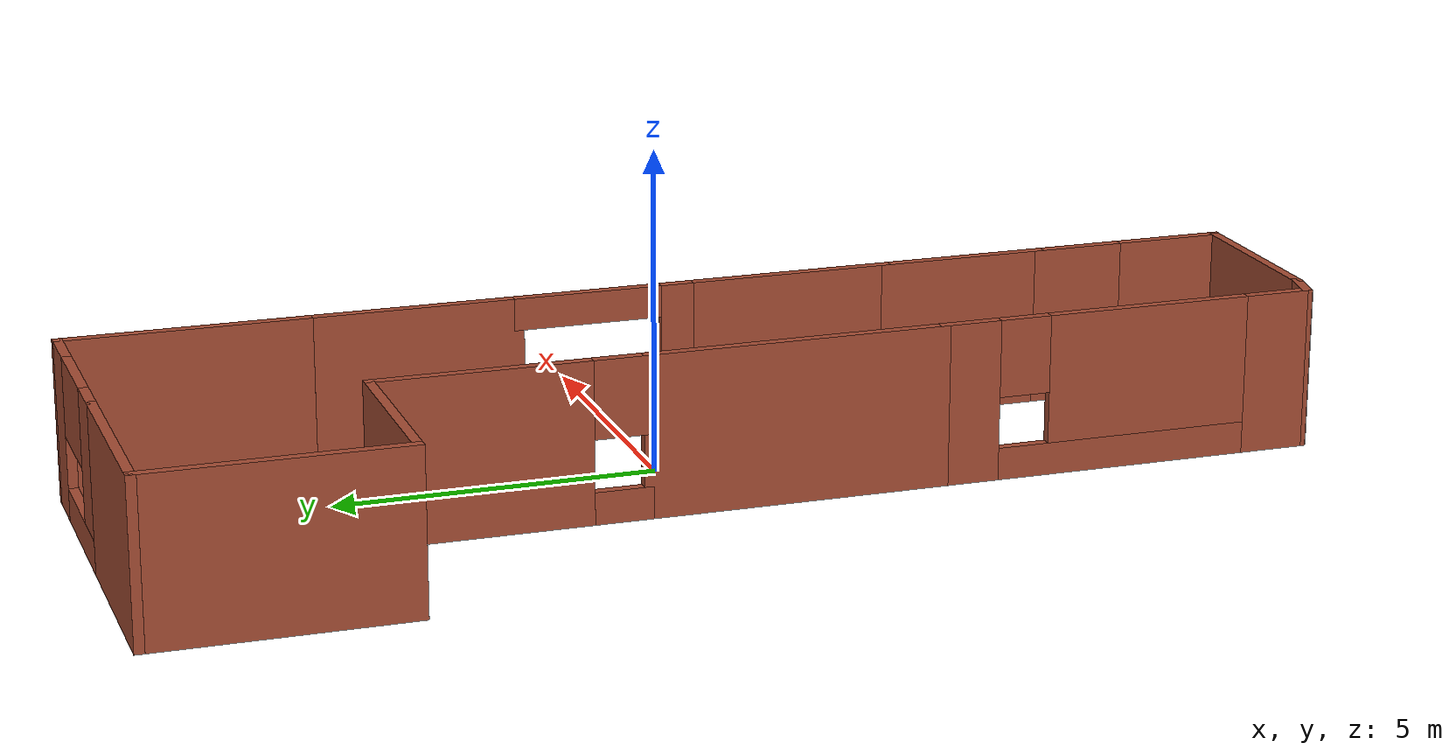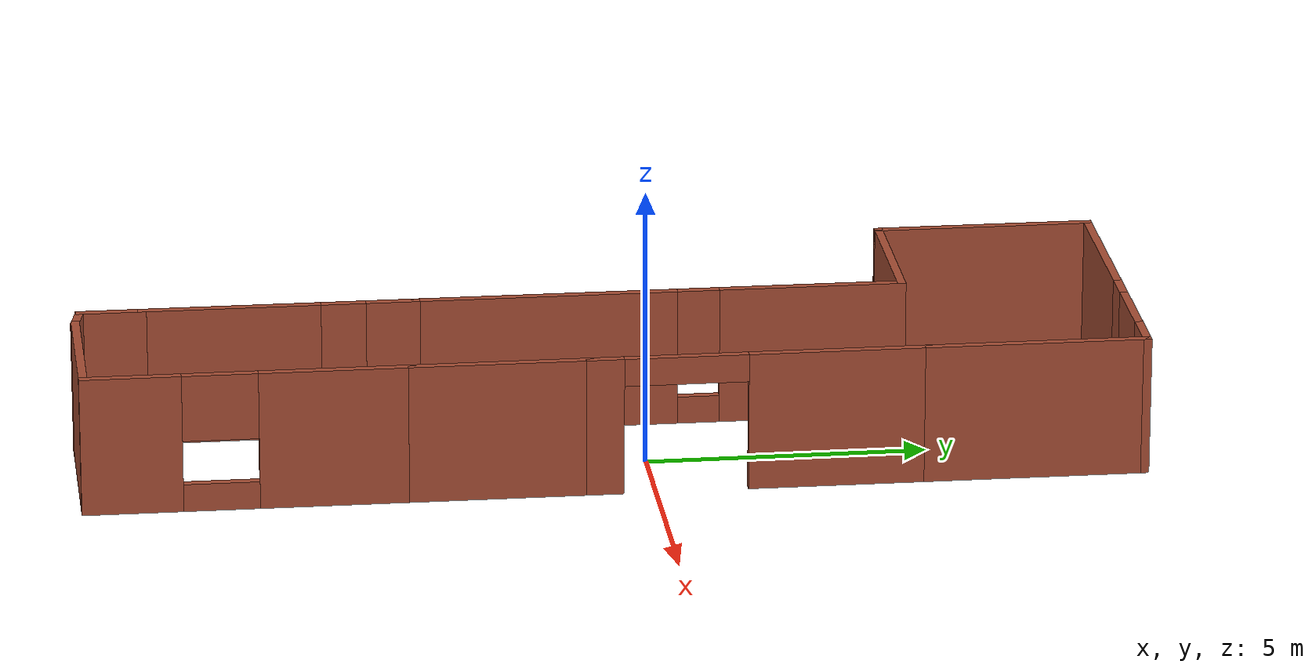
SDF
<?xml version='1.0'?>
<sdf version='1.7'>
  <model name='casa_teste'>
    <pose>-1.64708 -0.64592 0 0 -0 0</pose>
    <link name='Wall_10'>
      <collision name='Wall_10_Collision'>
        <geometry>
          <box>
            <size>2.75 0.15 2.5</size>
          </box>
        </geometry>
        <pose>0 0 1.25 0 -0 0</pose>
      </collision>
      <visual name='Wall_10_Visual'>
        <pose>0 0 1.25 0 -0 0</pose>
        <geometry>
          <box>
            <size>2.75 0.15 2.5</size>
          </box>
        </geometry>
        <material>
          <script>
            <uri>file://media/materials/scripts/gazebo.material</uri>
            <name>Gazebo/Bricks</name>
          </script>
          <ambient>1 1 1 1</ambient>
        </material>
        <meta>
          <layer>0</layer>
        </meta>
      </visual>
      <pose>3.1 -4.89337 0 0 -0 1.5708</pose>
    </link>
    <link name='Wall_11'>
      <collision name='Wall_11_Collision'>
        <geometry>
          <box>
            <size>3.25 0.15 2.5</size>
          </box>
        </geometry>
        <pose>0 0 1.25 0 -0 0</pose>
      </collision>
      <visual name='Wall_11_Visual'>
        <pose>0 0 1.25 0 -0 0</pose>
        <geometry>
          <box>
            <size>3.25 0.15 2.5</size>
          </box>
        </geometry>
        <material>
          <script>
            <uri>file://media/materials/scripts/gazebo.material</uri>
            <name>Gazebo/Bricks</name>
          </script>
          <ambient>1 1 1 1</ambient>
        </material>
        <meta>
          <layer>0</layer>
        </meta>
      </visual>
      <pose>3.1 -2.04337 0 0 -0 1.5708</pose>
    </link>
    <link name='Wall_12'>
      <pose>3.1 0.931626 0 0 -0 1.5708</pose>
      <visual name='Wall_12_Visual_0'>
        <pose>-1.16674 0 1.25 0 -0 0</pose>
        <geometry>
          <box>
            <size>0.666519 0.15 2.5</size>
          </box>
        </geometry>
        <material>
          <script>
            <uri>file://media/materials/scripts/gazebo.material</uri>
            <name>Gazebo/Bricks</name>
          </script>
          <ambient>1 1 1 1</ambient>
        </material>
        <meta>
          <layer>0</layer>
        </meta>
      </visual>
      <collision name='Wall_12_Collision_0'>
        <geometry>
          <box>
            <size>0.666519 0.15 2.5</size>
          </box>
        </geometry>
        <pose>-1.16674 0 1.25 0 -0 0</pose>
      </collision>
      <visual name='Wall_12_Visual_1'>
        <pose>0.33326 0 2.25 0 -0 0</pose>
        <geometry>
          <box>
            <size>2.33348 0.15 0.5</size>
          </box>
        </geometry>
        <material>
          <script>
            <uri>file://media/materials/scripts/gazebo.material</uri>
            <name>Gazebo/Bricks</name>
          </script>
          <ambient>1 1 1 1</ambient>
        </material>
        <meta>
          <layer>0</layer>
        </meta>
      </visual>
      <collision name='Wall_12_Collision_1'>
        <geometry>
          <box>
            <size>2.33348 0.15 0.5</size>
          </box>
        </geometry>
        <pose>0.33326 0 2.25 0 -0 0</pose>
      </collision>
    </link>
    <link name='Wall_17'>
      <collision name='Wall_17_Collision'>
        <geometry>
          <box>
            <size>3.25 0.15 2.5</size>
          </box>
        </geometry>
        <pose>0 0 1.25 0 -0 0</pose>
      </collision>
      <visual name='Wall_17_Visual'>
        <pose>0 0 1.25 0 -0 0</pose>
        <geometry>
          <box>
            <size>3.25 0.15 2.5</size>
          </box>
        </geometry>
        <material>
          <script>
            <uri>file://media/materials/scripts/gazebo.material</uri>
            <name>Gazebo/Bricks</name>
          </script>
          <ambient>1 1 1 1</ambient>
        </material>
        <meta>
          <layer>0</layer>
        </meta>
      </visual>
      <pose>3.1 3.90663 0 0 -0 1.5708</pose>
    </link>
    <link name='Wall_18'>
      <collision name='Wall_18_Collision'>
        <geometry>
          <box>
            <size>4 0.15 2.5</size>
          </box>
        </geometry>
        <pose>0 0 1.25 0 -0 0</pose>
      </collision>
      <visual name='Wall_18_Visual'>
        <pose>0 0 1.25 0 -0 0</pose>
        <geometry>
          <box>
            <size>4 0.15 2.5</size>
          </box>
        </geometry>
        <material>
          <script>
            <uri>file://media/materials/scripts/gazebo.material</uri>
            <name>Gazebo/Bricks</name>
          </script>
          <ambient>1 1 1 1</ambient>
        </material>
        <meta>
          <layer>0</layer>
        </meta>
      </visual>
      <pose>3.1 7.38163 0 0 -0 1.5708</pose>
    </link>
    <link name='Wall_19'>
      <pose>1.55 9.30663 0 0 -0 3.14159</pose>
      <visual name='Wall_19_Visual_0'>
        <pose>-1.16476 0 1.25 0 -0 0</pose>
        <geometry>
          <box>
            <size>0.920485 0.15 2.5</size>
          </box>
        </geometry>
        <material>
          <script>
            <uri>file://media/materials/scripts/gazebo.material</uri>
            <name>Gazebo/Bricks</name>
          </script>
          <ambient>1 1 1 1</ambient>
        </material>
        <meta>
          <layer>0</layer>
        </meta>
      </visual>
      <collision name='Wall_19_Collision_0'>
        <geometry>
          <box>
            <size>0.920485 0.15 2.5</size>
          </box>
        </geometry>
        <pose>-1.16476 0 1.25 0 -0 0</pose>
      </collision>
      <visual name='Wall_19_Visual_1'>
        <pose>0.460242 0 0.25 0 -0 0</pose>
        <geometry>
          <box>
            <size>2.32951 0.15 0.5</size>
          </box>
        </geometry>
        <material>
          <script>
            <uri>file://media/materials/scripts/gazebo.material</uri>
            <name>Gazebo/Bricks</name>
          </script>
          <ambient>1 1 1 1</ambient>
        </material>
        <meta>
          <layer>0</layer>
        </meta>
      </visual>
      <collision name='Wall_19_Collision_1'>
        <geometry>
          <box>
            <size>2.32951 0.15 0.5</size>
          </box>
        </geometry>
        <pose>0.460242 0 0.25 0 -0 0</pose>
      </collision>
      <visual name='Wall_19_Visual_2'>
        <pose>1.22434 0 1.5 0 -0 0</pose>
        <geometry>
          <box>
            <size>0.801315 0.15 2</size>
          </box>
        </geometry>
        <material>
          <script>
            <uri>file://media/materials/scripts/gazebo.material</uri>
            <name>Gazebo/Bricks</name>
          </script>
          <ambient>1 1 1 1</ambient>
        </material>
        <meta>
          <layer>0</layer>
        </meta>
      </visual>
      <collision name='Wall_19_Collision_2'>
        <geometry>
          <box>
            <size>0.801315 0.15 2</size>
          </box>
        </geometry>
        <pose>1.22434 0 1.5 0 -0 0</pose>
      </collision>
      <visual name='Wall_19_Visual_3'>
        <pose>0.059585 0 1.9 0 -0 0</pose>
        <geometry>
          <box>
            <size>1.5282 0.15 1.2</size>
          </box>
        </geometry>
        <material>
          <script>
            <uri>file://media/materials/scripts/gazebo.material</uri>
            <name>Gazebo/Bricks</name>
          </script>
          <ambient>1 1 1 1</ambient>
        </material>
        <meta>
          <layer>0</layer>
        </meta>
      </visual>
      <collision name='Wall_19_Collision_3'>
        <geometry>
          <box>
            <size>1.5282 0.15 1.2</size>
          </box>
        </geometry>
        <pose>0.059585 0 1.9 0 -0 0</pose>
      </collision>
    </link>
    <link name='Wall_20'>
      <collision name='Wall_20_Collision'>
        <geometry>
          <box>
            <size>3.25 0.15 2.5</size>
          </box>
        </geometry>
        <pose>0 0 1.25 0 -0 0</pose>
      </collision>
      <visual name='Wall_20_Visual'>
        <pose>0 0 1.25 0 -0 0</pose>
        <geometry>
          <box>
            <size>3.25 0.15 2.5</size>
          </box>
        </geometry>
        <material>
          <script>
            <uri>file://media/materials/scripts/gazebo.material</uri>
            <name>Gazebo/Bricks</name>
          </script>
          <ambient>1 1 1 1</ambient>
        </material>
        <meta>
          <layer>0</layer>
        </meta>
      </visual>
      <pose>-1.55 9.30663 0 0 -0 3.14159</pose>
    </link>
    <link name='Wall_21'>
      <collision name='Wall_21_Collision'>
        <geometry>
          <box>
            <size>4 0.15 2.5</size>
          </box>
        </geometry>
        <pose>0 0 1.25 0 -0 0</pose>
      </collision>
      <visual name='Wall_21_Visual'>
        <pose>0 0 1.25 0 -0 0</pose>
        <geometry>
          <box>
            <size>4 0.15 2.5</size>
          </box>
        </geometry>
        <material>
          <script>
            <uri>file://media/materials/scripts/gazebo.material</uri>
            <name>Gazebo/Bricks</name>
          </script>
          <ambient>1 1 1 1</ambient>
        </material>
        <meta>
          <layer>0</layer>
        </meta>
      </visual>
      <pose>-3.1 7.38163 0 0 -0 -1.5708</pose>
    </link>
    <link name='Wall_22'>
      <collision name='Wall_22_Collision'>
        <geometry>
          <box>
            <size>3 0.15 2.5</size>
          </box>
        </geometry>
        <pose>0 0 1.25 0 -0 0</pose>
      </collision>
      <visual name='Wall_22_Visual'>
        <pose>0 0 1.25 0 -0 0</pose>
        <geometry>
          <box>
            <size>3 0.15 2.5</size>
          </box>
        </geometry>
        <material>
          <script>
            <uri>file://media/materials/scripts/gazebo.material</uri>
            <name>Gazebo/Bricks</name>
          </script>
          <ambient>1 1 1 1</ambient>
        </material>
        <meta>
          <layer>0</layer>
        </meta>
      </visual>
      <pose>-1.675 5.45663 0 0 -0 0</pose>
    </link>
    <link name='Wall_23'>
      <pose>-0.25 3.40663 0 0 -0 -1.5708</pose>
      <visual name='Wall_23_Visual_0'>
        <pose>-0.450207 0 1.25 0 -0 0</pose>
        <geometry>
          <box>
            <size>3.34958 0.15 2.5</size>
          </box>
        </geometry>
        <material>
          <script>
            <uri>file://media/materials/scripts/gazebo.material</uri>
            <name>Gazebo/Bricks</name>
          </script>
          <ambient>1 1 1 1</ambient>
        </material>
        <meta>
          <layer>0</layer>
        </meta>
      </visual>
      <collision name='Wall_23_Collision_0'>
        <geometry>
          <box>
            <size>3.34958 0.15 2.5</size>
          </box>
        </geometry>
        <pose>-0.450207 0 1.25 0 -0 0</pose>
      </collision>
      <visual name='Wall_23_Visual_1'>
        <pose>1.67479 0 0.25 0 -0 0</pose>
        <geometry>
          <box>
            <size>0.900415 0.15 0.5</size>
          </box>
        </geometry>
        <material>
          <script>
            <uri>file://media/materials/scripts/gazebo.material</uri>
            <name>Gazebo/Bricks</name>
          </script>
          <ambient>1 1 1 1</ambient>
        </material>
        <meta>
          <layer>0</layer>
        </meta>
      </visual>
      <collision name='Wall_23_Collision_1'>
        <geometry>
          <box>
            <size>0.900415 0.15 0.5</size>
          </box>
        </geometry>
        <pose>1.67479 0 0.25 0 -0 0</pose>
      </collision>
      <visual name='Wall_23_Visual_2'>
        <pose>1.67479 0 1.9 0 -0 0</pose>
        <geometry>
          <box>
            <size>0.900415 0.15 1.2</size>
          </box>
        </geometry>
        <material>
          <script>
            <uri>file://media/materials/scripts/gazebo.material</uri>
            <name>Gazebo/Bricks</name>
          </script>
          <ambient>1 1 1 1</ambient>
        </material>
        <meta>
          <layer>0</layer>
        </meta>
      </visual>
      <collision name='Wall_23_Collision_2'>
        <geometry>
          <box>
            <size>0.900415 0.15 1.2</size>
          </box>
        </geometry>
        <pose>1.67479 0 1.9 0 -0 0</pose>
      </collision>
    </link>
    <link name='Wall_24'>
      <collision name='Wall_24_Collision'>
        <geometry>
          <box>
            <size>4.75 0.15 2.5</size>
          </box>
        </geometry>
        <pose>0 0 1.25 0 -0 0</pose>
      </collision>
      <visual name='Wall_24_Visual'>
        <pose>0 0 1.25 0 -0 0</pose>
        <geometry>
          <box>
            <size>4.75 0.15 2.5</size>
          </box>
        </geometry>
        <material>
          <script>
            <uri>file://media/materials/scripts/gazebo.material</uri>
            <name>Gazebo/Bricks</name>
          </script>
          <ambient>1 1 1 1</ambient>
        </material>
        <meta>
          <layer>0</layer>
        </meta>
      </visual>
      <pose>-0.25 -0.943374 0 0 -0 -1.5708</pose>
    </link>
    <link name='Wall_25'>
      <pose>-0.25 -5.66837 0 0 -0 -1.5708</pose>
      <visual name='Wall_25_Visual_0'>
        <pose>-2.01967 0 1.25 0 -0 0</pose>
        <geometry>
          <box>
            <size>0.960656 0.15 2.5</size>
          </box>
        </geometry>
        <material>
          <script>
            <uri>file://media/materials/scripts/gazebo.material</uri>
            <name>Gazebo/Bricks</name>
          </script>
          <ambient>1 1 1 1</ambient>
        </material>
        <meta>
          <layer>0</layer>
        </meta>
      </visual>
      <collision name='Wall_25_Collision_0'>
        <geometry>
          <box>
            <size>0.960656 0.15 2.5</size>
          </box>
        </geometry>
        <pose>-2.01967 0 1.25 0 -0 0</pose>
      </collision>
      <visual name='Wall_25_Visual_1'>
        <pose>0.480328 0 0.25 0 -0 0</pose>
        <geometry>
          <box>
            <size>4.03934 0.15 0.5</size>
          </box>
        </geometry>
        <material>
          <script>
            <uri>file://media/materials/scripts/gazebo.material</uri>
            <name>Gazebo/Bricks</name>
          </script>
          <ambient>1 1 1 1</ambient>
        </material>
        <meta>
          <layer>0</layer>
        </meta>
      </visual>
      <collision name='Wall_25_Collision_1'>
        <geometry>
          <box>
            <size>4.03934 0.15 0.5</size>
          </box>
        </geometry>
        <pose>0.480328 0 0.25 0 -0 0</pose>
      </collision>
      <visual name='Wall_25_Visual_2'>
        <pose>0.880328 0 1.5 0 -0 0</pose>
        <geometry>
          <box>
            <size>3.23934 0.15 2</size>
          </box>
        </geometry>
        <material>
          <script>
            <uri>file://media/materials/scripts/gazebo.material</uri>
            <name>Gazebo/Bricks</name>
          </script>
          <ambient>1 1 1 1</ambient>
        </material>
        <meta>
          <layer>0</layer>
        </meta>
      </visual>
      <collision name='Wall_25_Collision_2'>
        <geometry>
          <box>
            <size>3.23934 0.15 2</size>
          </box>
        </geometry>
        <pose>0.880328 0 1.5 0 -0 0</pose>
      </collision>
      <visual name='Wall_25_Visual_3'>
        <pose>-1.13934 0 1.9 0 -0 0</pose>
        <geometry>
          <box>
            <size>0.8 0.15 1.2</size>
          </box>
        </geometry>
        <material>
          <script>
            <uri>file://media/materials/scripts/gazebo.material</uri>
            <name>Gazebo/Bricks</name>
          </script>
          <ambient>1 1 1 1</ambient>
        </material>
        <meta>
          <layer>0</layer>
        </meta>
      </visual>
      <collision name='Wall_25_Collision_3'>
        <geometry>
          <box>
            <size>0.8 0.15 1.2</size>
          </box>
        </geometry>
        <pose>-1.13934 0 1.9 0 -0 0</pose>
      </collision>
    </link>
    <link name='Wall_26'>
      <collision name='Wall_26_Collision'>
        <geometry>
          <box>
            <size>1.25 0.15 2.5</size>
          </box>
        </geometry>
        <pose>0 0 1.25 0 -0 0</pose>
      </collision>
      <visual name='Wall_26_Visual'>
        <pose>0 0 1.25 0 -0 0</pose>
        <geometry>
          <box>
            <size>1.25 0.15 2.5</size>
          </box>
        </geometry>
        <material>
          <script>
            <uri>file://media/materials/scripts/gazebo.material</uri>
            <name>Gazebo/Bricks</name>
          </script>
          <ambient>1 1 1 1</ambient>
        </material>
        <meta>
          <layer>0</layer>
        </meta>
      </visual>
      <pose>-0.25 -8.64337 0 0 -0 -1.5708</pose>
    </link>
    <link name='Wall_27'>
      <collision name='Wall_27_Collision'>
        <geometry>
          <box>
            <size>0.659902 0.15 2.5</size>
          </box>
        </geometry>
        <pose>0 0 1.25 0 -0 0</pose>
      </collision>
      <visual name='Wall_27_Visual'>
        <pose>0 0 1.25 0 -0 0</pose>
        <geometry>
          <box>
            <size>0.659902 0.15 2.5</size>
          </box>
        </geometry>
        <material>
          <script>
            <uri>file://media/materials/scripts/gazebo.material</uri>
            <name>Gazebo/Bricks</name>
          </script>
          <ambient>1 1 1 1</ambient>
        </material>
        <meta>
          <layer>0</layer>
        </meta>
      </visual>
      <pose>0 -9.24337 0 0 -0 -0.197396</pose>
    </link>
    <link name='Wall_5'>
      <collision name='Wall_5_Collision'>
        <geometry>
          <box>
            <size>3 0.15 2.5</size>
          </box>
        </geometry>
        <pose>0 0 1.25 0 -0 0</pose>
      </collision>
      <visual name='Wall_5_Visual'>
        <pose>0 0 1.25 0 -0 0</pose>
        <geometry>
          <box>
            <size>3 0.15 2.5</size>
          </box>
        </geometry>
        <material>
          <script>
            <uri>file://media/materials/scripts/gazebo.material</uri>
            <name>Gazebo/Bricks</name>
          </script>
          <ambient>1 1 1 1</ambient>
        </material>
        <meta>
          <layer>0</layer>
        </meta>
      </visual>
      <pose>1.675 -9.29337 0 0 -0 0</pose>
    </link>
    <link name='Wall_9'>
      <pose>3.1 -7.74337 0 0 -0 1.5708</pose>
      <visual name='Wall_9_Visual_0'>
        <pose>-0.740362 0 1.25 0 -0 0</pose>
        <geometry>
          <box>
            <size>1.76928 0.15 2.5</size>
          </box>
        </geometry>
        <material>
          <script>
            <uri>file://media/materials/scripts/gazebo.material</uri>
            <name>Gazebo/Bricks</name>
          </script>
          <ambient>1 1 1 1</ambient>
        </material>
        <meta>
          <layer>0</layer>
        </meta>
      </visual>
      <collision name='Wall_9_Collision_0'>
        <geometry>
          <box>
            <size>1.76928 0.15 2.5</size>
          </box>
        </geometry>
        <pose>-0.740362 0 1.25 0 -0 0</pose>
      </collision>
      <visual name='Wall_9_Visual_1'>
        <pose>0.884638 0 0.25 0 -0 0</pose>
        <geometry>
          <box>
            <size>1.48072 0.15 0.5</size>
          </box>
        </geometry>
        <material>
          <script>
            <uri>file://media/materials/scripts/gazebo.material</uri>
            <name>Gazebo/Bricks</name>
          </script>
          <ambient>1 1 1 1</ambient>
        </material>
        <meta>
          <layer>0</layer>
        </meta>
      </visual>
      <collision name='Wall_9_Collision_1'>
        <geometry>
          <box>
            <size>1.48072 0.15 0.5</size>
          </box>
        </geometry>
        <pose>0.884638 0 0.25 0 -0 0</pose>
      </collision>
      <visual name='Wall_9_Visual_2'>
        <pose>0.884638 0 1.9 0 -0 0</pose>
        <geometry>
          <box>
            <size>1.48072 0.15 1.2</size>
          </box>
        </geometry>
        <material>
          <script>
            <uri>file://media/materials/scripts/gazebo.material</uri>
            <name>Gazebo/Bricks</name>
          </script>
          <ambient>1 1 1 1</ambient>
        </material>
        <meta>
          <layer>0</layer>
        </meta>
      </visual>
      <collision name='Wall_9_Collision_2'>
        <geometry>
          <box>
            <size>1.48072 0.15 1.2</size>
          </box>
        </geometry>
        <pose>0.884638 0 1.9 0 -0 0</pose>
      </collision>
    </link>
    <static>1</static>
  </model>
</sdf>
